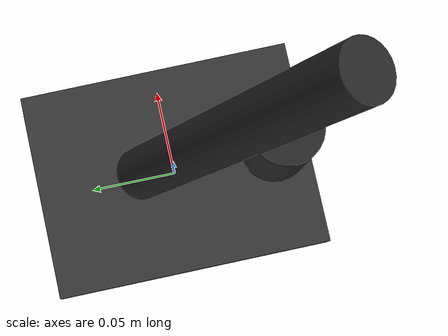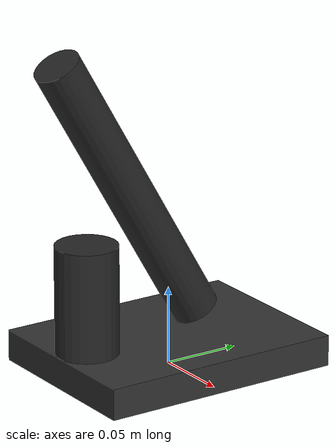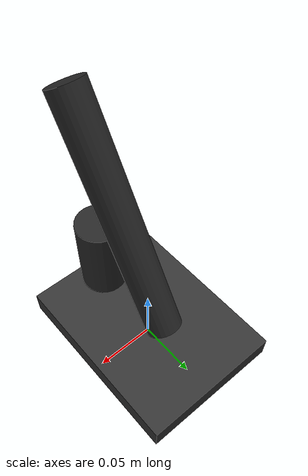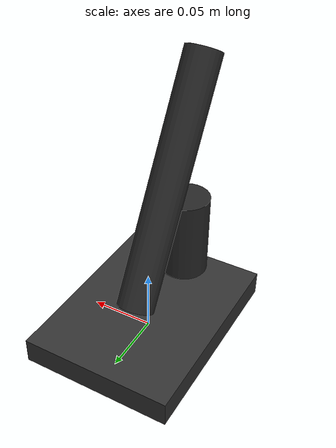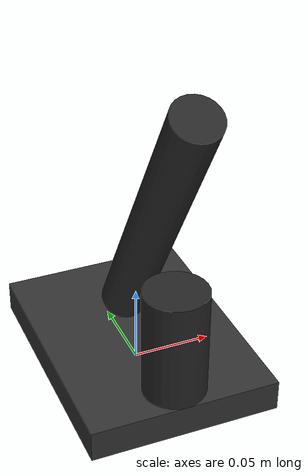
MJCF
<?xml version="1.0" encoding="utf-8"?>
<mujoco model="optical_microscope">
  <compiler angle="radian" autolimits="true"/>
  <default>
    <default class="body"><geom contype="1" conaffinity="1"/></default>
  </default>
  <worldbody>
    <body name="base">
      <geom type="box" size="0.06 0.08 0.01" pos="0 0 0.01" rgba="0.2 0.2 0.2 1" class="body"/>
      <geom type="cylinder" size="0.02 0.04" pos="0 -0.06 0.05" rgba="0.15 0.15 0.15 1" class="body"/>
      <body name="focus_stage" pos="0 -0.03 0.12">
        <joint name="focus_stage_joint" type="slide" axis="0 0 1" range="-0.02 0.02" damping="1.0" frictionloss="0.5"/>
  <geom type="cylinder" size="0.015 0.10" pos="0 0 0" rgba="0.15 0.15 0.15 1" class="body" quat="0.966 0.259 0 0"/>
      </body>
    </body>
  </worldbody>
</mujoco>
